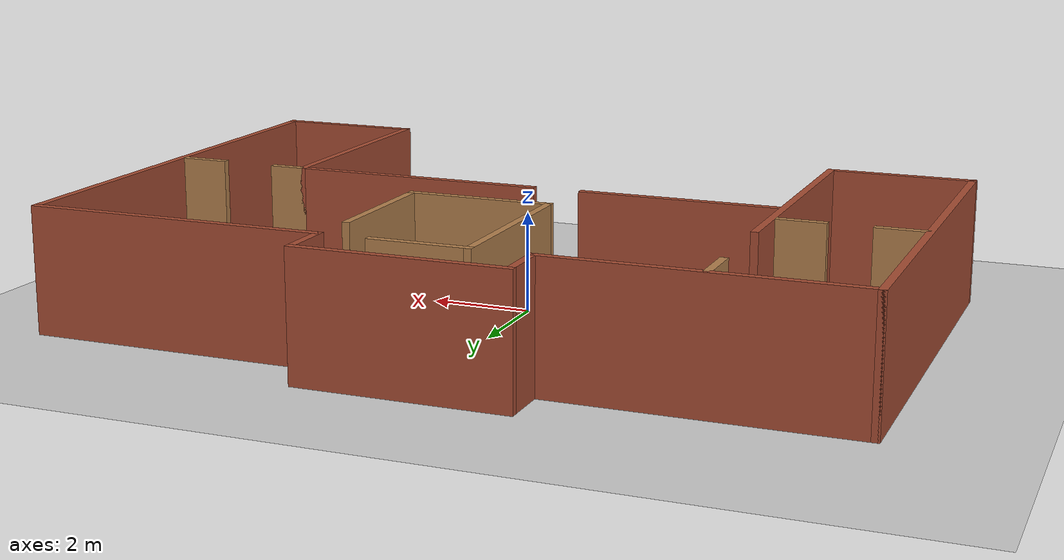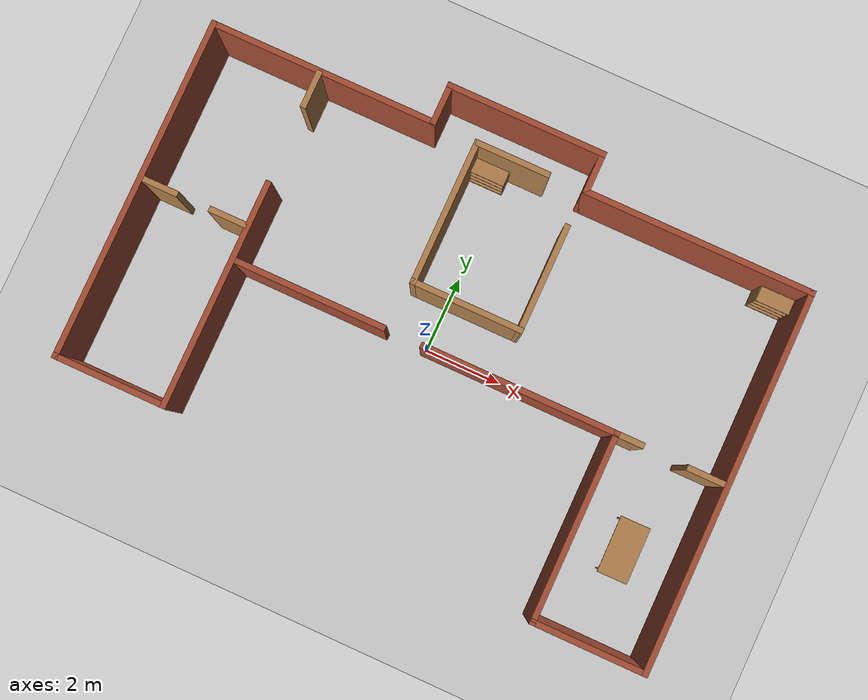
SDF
<sdf version="1.6">
 <world name="default">
  <model name="ground_plane">
   <static>1</static>
   <link name="link">
    <collision name="collision">
     <geometry><plane><normal>0 0 1</normal><size>100 100</size></plane></geometry>
     <surface>
      <contact><collide_bitmask>65535</collide_bitmask></contact>
      <friction><ode><mu>100</mu><mu2>50</mu2></ode></friction>
     </surface>
    </collision>
    <visual name="visual">
     <cast_shadows>0</cast_shadows>
     <geometry><plane><normal>0 0 1</normal><size>100 100</size></plane></geometry>
     <material>
      <script><uri>file://media/materials/scripts/gazebo.material</uri><name>Gazebo/Grey</name></script>
     </material>
    </visual>
   </link>
  </model>
  <model name="house_experiment_1">
   <pose>-0.00958 0.481803 0 0 -0 0</pose>
   <link name="Wall_0">
    <collision name="Wall_0_Collision">
     <geometry><box><size>4 0.15 2.5</size></box></geometry>
     <pose>0 0 1.25 0 -0 0</pose>
    </collision>
    <visual name="Wall_0_Visual">
     <pose>0 0 1.25 0 -0 0</pose>
     <geometry><box><size>4 0.15 2.5</size></box></geometry>
     <material>
      <script><uri>file://media/materials/scripts/gazebo.material</uri><name>Gazebo/Bricks</name></script>
      <ambient>1 1 1 1</ambient>
     </material>
     <meta><layer>0</layer></meta>
    </visual>
    <pose>-3.0204 -0.576783 0 0 -0 3.14159</pose>
   </link>
   <link name="Wall_10">
    <collision name="Wall_10_Collision">
     <geometry><box><size>4.195 0.15 2.5</size></box></geometry>
     <pose>0 0 1.25 0 -0 0</pose>
    </collision>
    <visual name="Wall_10_Visual">
     <pose>0 0 1.25 0 -0 0</pose>
     <geometry><box><size>4.195 0.15 2.5</size></box></geometry>
     <material>
      <script><uri>file://media/materials/scripts/gazebo.material</uri><name>Gazebo/Bricks</name></script>
      <ambient>1 1 1 1</ambient>
     </material>
     <meta><layer>0</layer></meta>
    </visual>
    <pose>-0.031569 5.42562 0 0 -0 0</pose>
   </link>
   <link name="Wall_12">
    <collision name="Wall_12_Collision">
     <geometry><box><size>6.05761 0.15 2.5</size></box></geometry>
     <pose>0 0 1.25 0 -0 0</pose>
    </collision>
    <visual name="Wall_12_Visual">
     <pose>0 0 1.25 0 -0 0</pose>
     <geometry><box><size>6.05761 0.15 2.5</size></box></geometry>
     <material>
      <script><uri>file://media/materials/scripts/gazebo.material</uri><name>Gazebo/Bricks</name></script>
      <ambient>1 1 1 1</ambient>
     </material>
     <meta><layer>0</layer></meta>
    </visual>
    <pose>4.9462 4.42438 0 0 -0 0</pose>
   </link>
   <link name="Wall_13">
    <collision name="Wall_13_Collision">
     <geometry><box><size>10 0.15 2.5</size></box></geometry>
     <pose>0 0 1.25 0 -0 0</pose>
    </collision>
    <visual name="Wall_13_Visual">
     <pose>0 0 1.25 0 -0 0</pose>
     <geometry><box><size>10 0.15 2.5</size></box></geometry>
     <material>
      <script><uri>file://media/materials/scripts/gazebo.material</uri><name>Gazebo/Bricks</name></script>
      <ambient>1 1 1 1</ambient>
     </material>
     <meta><layer>0</layer></meta>
    </visual>
    <pose>7.9 -0.50062 0 0 -0 -1.5708</pose>
   </link>
   <link name="Wall_15">
    <collision name="Wall_15_Collision">
     <geometry><box><size>3.02263 0.15 2.5</size></box></geometry>
     <pose>0 0 1.25 0 -0 0</pose>
    </collision>
    <visual name="Wall_15_Visual">
     <pose>0 0 1.25 0 -0 0</pose>
     <geometry><box><size>3.02263 0.15 2.5</size></box></geometry>
     <material>
      <script><uri>file://media/materials/scripts/gazebo.material</uri><name>Gazebo/Bricks</name></script>
      <ambient>1 1 1 1</ambient>
     </material>
     <meta><layer>0</layer></meta>
    </visual>
    <pose>6.46369 -5.42562 0 0 -0 3.14159</pose>
   </link>
   <link name="Wall_16">
    <collision name="Wall_16_Collision">
     <geometry><box><size>5 0.15 2.5</size></box></geometry>
     <pose>0 0 1.25 0 -0 0</pose>
    </collision>
    <visual name="Wall_16_Visual">
     <pose>0 0 1.25 0 -0 0</pose>
     <geometry><box><size>5 0.15 2.5</size></box></geometry>
     <material>
      <script><uri>file://media/materials/scripts/gazebo.material</uri><name>Gazebo/Bricks</name></script>
      <ambient>1 1 1 1</ambient>
     </material>
     <meta><layer>0</layer></meta>
    </visual>
    <pose>5.00988 -3.00062 0 0 -0 1.5708</pose>
   </link>
   <link name="Wall_17">
    <collision name="Wall_17_Collision">
     <geometry><box><size>5.18251 0.15 2.5</size></box></geometry>
     <pose>0 0 1.25 0 -0 0</pose>
    </collision>
    <visual name="Wall_17_Visual">
     <pose>0 0 1.25 0 -0 0</pose>
     <geometry><box><size>5.18251 0.15 2.5</size></box></geometry>
     <material>
      <script><uri>file://media/materials/scripts/gazebo.material</uri><name>Gazebo/Bricks</name></script>
      <ambient>1 1 1 1</ambient>
     </material>
     <meta><layer>0</layer></meta>
    </visual>
    <pose>2.49363 -0.57562 0 0 -0 3.14159</pose>
   </link>
   <link name="Wall_19">
    <collision name="Wall_19_Collision">
     <geometry><box><size>1 0.15 2.5</size></box></geometry>
     <pose>0 0 1.25 0 -0 0</pose>
    </collision>
    <visual name="Wall_19_Visual">
     <pose>0 0 1.25 0 -0 0</pose>
     <geometry><box><size>1 0.15 2.5</size></box></geometry>
     <material>
      <script><uri>file://media/materials/scripts/gazebo.material</uri><name>Gazebo/Wood</name></script>
      <ambient>1 1 1 1</ambient>
     </material>
     <meta><layer>0</layer></meta>
    </visual>
    <pose>-5.06582 3.95394 0 0 -0 -1.5708</pose>
   </link>
   <link name="Wall_2">
    <collision name="Wall_2_Collision">
     <geometry><box><size>6 0.15 2.5</size></box></geometry>
     <pose>0 0 1.25 0 -0 0</pose>
    </collision>
    <visual name="Wall_2_Visual">
     <pose>0 0 1.25 0 -0 0</pose>
     <geometry><box><size>6 0.15 2.5</size></box></geometry>
     <material>
      <script><uri>file://media/materials/scripts/gazebo.material</uri><name>Gazebo/Bricks</name></script>
      <ambient>1 1 1 1</ambient>
     </material>
     <meta><layer>0</layer></meta>
    </visual>
    <pose>-5.05 -1.50062 0 0 -0 1.5708</pose>
   </link>
   <link name="Wall_21">
    <collision name="Wall_21_Collision">
     <geometry><box><size>1 0.15 2.5</size></box></geometry>
     <pose>0 0 1.25 0 -0 0</pose>
    </collision>
    <visual name="Wall_21_Visual">
     <pose>0 0 1.25 0 -0 0</pose>
     <geometry><box><size>1 0.15 2.5</size></box></geometry>
     <material>
      <script><uri>file://media/materials/scripts/gazebo.material</uri><name>Gazebo/Wood</name></script>
      <ambient>1 1 1 1</ambient>
     </material>
     <meta><layer>0</layer></meta>
    </visual>
    <pose>-7.40216 0.29684 0 0 -0 0</pose>
   </link>
   <link name="Wall_23">
    <collision name="Wall_23_Collision">
     <geometry><box><size>1 0.15 2.5</size></box></geometry>
     <pose>0 0 1.25 0 -0 0</pose>
    </collision>
    <visual name="Wall_23_Visual">
     <pose>0 0 1.25 0 -0 0</pose>
     <geometry><box><size>1 0.15 2.5</size></box></geometry>
     <material>
      <script><uri>file://media/materials/scripts/gazebo.material</uri><name>Gazebo/Wood</name></script>
      <ambient>1 1 1 1</ambient>
     </material>
     <meta><layer>0</layer></meta>
    </visual>
    <pose>-5.57618 0.29684 0 0 -0 3.14159</pose>
   </link>
   <link name="Wall_25">
    <collision name="Wall_25_Collision">
     <geometry><box><size>0.790119 0.15 2.5</size></box></geometry>
     <pose>0 0 1.25 0 -0 0</pose>
    </collision>
    <visual name="Wall_25_Visual">
     <pose>0 0 1.25 0 -0 0</pose>
     <geometry><box><size>0.790119 0.15 2.5</size></box></geometry>
     <material>
      <script><uri>file://media/materials/scripts/gazebo.material</uri><name>Gazebo/Wood</name></script>
      <ambient>1 1 1 1</ambient>
     </material>
     <meta><layer>0</layer></meta>
    </visual>
    <pose>5.32994 -0.57562 0 0 -0 0</pose>
   </link>
   <link name="Wall_27">
    <collision name="Wall_27_Collision">
     <geometry><box><size>1 0.15 2.5</size></box></geometry>
     <pose>0 0 1.25 0 -0 0</pose>
    </collision>
    <visual name="Wall_27_Visual">
     <pose>0 0 1.25 0 -0 0</pose>
     <geometry><box><size>1 0.15 2.5</size></box></geometry>
     <material>
      <script><uri>file://media/materials/scripts/gazebo.material</uri><name>Gazebo/Wood</name></script>
      <ambient>1 1 1 1</ambient>
     </material>
     <meta><layer>0</layer></meta>
    </visual>
    <pose>7.34898 -0.612643 0 0 -0 3.14159</pose>
   </link>
   <link name="Wall_36">
    <collision name="Wall_36_Collision">
     <geometry><box><size>1 0.15 2.5</size></box></geometry>
     <pose>0 0 1.25 0 -0 0</pose>
    </collision>
    <visual name="Wall_36_Visual">
     <pose>0 0 1.25 0 -0 0</pose>
     <geometry><box><size>1 0.15 2.5</size></box></geometry>
     <material>
      <script><uri>file://media/materials/scripts/gazebo.material</uri><name>Gazebo/Bricks</name></script>
      <ambient>1 1 1 1</ambient>
     </material>
     <meta><layer>0</layer></meta>
    </visual>
    <pose>-2.05 4.86687 0 0 -0 1.5708</pose>
   </link>
   <link name="Wall_38">
    <collision name="Wall_38_Collision">
     <geometry><box><size>1 0.15 2.5</size></box></geometry>
     <pose>0 0 1.25 0 -0 0</pose>
    </collision>
    <visual name="Wall_38_Visual">
     <pose>0 0 1.25 0 -0 0</pose>
     <geometry><box><size>1 0.15 2.5</size></box></geometry>
     <material>
      <script><uri>file://media/materials/scripts/gazebo.material</uri><name>Gazebo/Bricks</name></script>
      <ambient>1 1 1 1</ambient>
     </material>
     <meta><layer>0</layer></meta>
    </visual>
    <pose>1.99239 4.84938 0 0 -0 1.5708</pose>
   </link>
   <link name="Wall_4">
    <collision name="Wall_4_Collision">
     <geometry><box><size>3 0.15 2.5</size></box></geometry>
     <pose>0 0 1.25 0 -0 0</pose>
    </collision>
    <visual name="Wall_4_Visual">
     <pose>0 0 1.25 0 -0 0</pose>
     <geometry><box><size>3 0.15 2.5</size></box></geometry>
     <material>
      <script><uri>file://media/materials/scripts/gazebo.material</uri><name>Gazebo/Bricks</name></script>
      <ambient>1 1 1 1</ambient>
     </material>
     <meta><layer>0</layer></meta>
    </visual>
    <pose>-6.475 -4.42562 0 0 -0 3.14159</pose>
   </link>
   <link name="Wall_40">
    <collision name="Wall_40_Collision">
     <geometry><box><size>3.84549 0.15 2.5</size></box></geometry>
     <pose>0 0 1.25 0 -0 0</pose>
    </collision>
    <visual name="Wall_40_Visual">
     <pose>0 0 1.25 0 -0 0</pose>
     <geometry><box><size>3.84549 0.15 2.5</size></box></geometry>
     <material>
      <script><uri>file://media/materials/scripts/gazebo.material</uri><name>Gazebo/Wood</name></script>
      <ambient>1 1 1 1</ambient>
     </material>
     <meta><layer>0</layer></meta>
    </visual>
    <pose>-0.885356 2.57359 0 0 -0 1.5708</pose>
   </link>
   <link name="Wall_46">
    <collision name="Wall_46_Collision">
     <geometry><box><size>2.9508 0.15 2.5</size></box></geometry>
     <pose>0 0 1.25 0 -0 0</pose>
    </collision>
    <visual name="Wall_46_Visual">
     <pose>0 0 1.25 0 -0 0</pose>
     <geometry><box><size>2.9508 0.15 2.5</size></box></geometry>
     <material>
      <script><uri>file://media/materials/scripts/gazebo.material</uri><name>Gazebo/Wood</name></script>
      <ambient>1 1 1 1</ambient>
     </material>
     <meta><layer>0</layer></meta>
    </visual>
    <pose>0.515046 0.725904 0 0 -0 0</pose>
   </link>
   <link name="Wall_47">
    <collision name="Wall_47_Collision">
     <geometry><box><size>2.86746 0.15 2.5</size></box></geometry>
     <pose>0 0 1.25 0 -0 0</pose>
    </collision>
    <visual name="Wall_47_Visual">
     <pose>0 0 1.25 0 -0 0</pose>
     <geometry><box><size>2.86746 0.15 2.5</size></box></geometry>
     <material>
      <script><uri>file://media/materials/scripts/gazebo.material</uri><name>Gazebo/Wood</name></script>
      <ambient>1 1 1 1</ambient>
     </material>
     <meta><layer>0</layer></meta>
    </visual>
    <pose>1.92092 2.08463 0 0 -0 1.57097</pose>
   </link>
   <link name="Wall_49">
    <collision name="Wall_49_Collision">
     <geometry><box><size>2 0.15 2.5</size></box></geometry>
     <pose>0 0 1.25 0 -0 0</pose>
    </collision>
    <visual name="Wall_49_Visual">
     <pose>0 0 1.25 0 -0 0</pose>
     <geometry><box><size>2 0.15 2.5</size></box></geometry>
     <material>
      <script><uri>file://media/materials/scripts/gazebo.material</uri><name>Gazebo/Wood</name></script>
      <ambient>1 1 1 1</ambient>
     </material>
     <meta><layer>0</layer></meta>
    </visual>
    <pose>0.039644 4.42127 0 0 -0 0</pose>
   </link>
   <link name="Wall_6">
    <collision name="Wall_6_Collision">
     <geometry><box><size>9.01749 0.15 2.5</size></box></geometry>
     <pose>0 0 1.25 0 -0 0</pose>
    </collision>
    <visual name="Wall_6_Visual">
     <pose>0 0 1.25 0 -0 0</pose>
     <geometry><box><size>9.01749 0.15 2.5</size></box></geometry>
     <material>
      <script><uri>file://media/materials/scripts/gazebo.material</uri><name>Gazebo/Bricks</name></script>
      <ambient>1 1 1 1</ambient>
     </material>
     <meta><layer>0</layer></meta>
    </visual>
    <pose>-7.9 0.008125 0 0 -0 1.5708</pose>
   </link>
   <link name="Wall_8">
    <collision name="Wall_8_Collision">
     <geometry><box><size>6 0.15 2.5</size></box></geometry>
     <pose>0 0 1.25 0 -0 0</pose>
    </collision>
    <visual name="Wall_8_Visual">
     <pose>0 0 1.25 0 -0 0</pose>
     <geometry><box><size>6 0.15 2.5</size></box></geometry>
     <material>
      <script><uri>file://media/materials/scripts/gazebo.material</uri><name>Gazebo/Bricks</name></script>
      <ambient>1 1 1 1</ambient>
     </material>
     <meta><layer>0</layer></meta>
    </visual>
    <pose>-4.975 4.44187 0 0 -0 0</pose>
   </link>
   <static>1</static>
  </model>
  <model name="table_1">
   <static>1</static>
   <link name="link">
    <collision name="surface">
     <pose>0 0 1 0 -0 0</pose>
     <geometry><box><size>1.5 0.8 0.03</size></box></geometry>
     <surface><friction><ode><mu>0.6</mu><mu2>0.6</mu2></ode></friction></surface>
    </collision>
    <visual name="visual1">
     <pose>0 0 1 0 -0 0</pose>
     <geometry><box><size>1.5 0.8 0.03</size></box></geometry>
     <material>
      <script><uri>file://media/materials/scripts/gazebo.material</uri><name>Gazebo/Wood</name></script>
     </material>
    </visual>
    <collision name="front_left_leg">
     <pose>0.68 0.38 0.5 0 -0 0</pose>
     <geometry><cylinder><radius>0.02</radius><length>1</length></cylinder></geometry>
    </collision>
    <visual name="front_left_leg">
     <pose>0.68 0.38 0.5 0 -0 0</pose>
     <geometry><cylinder><radius>0.02</radius><length>1</length></cylinder></geometry>
     <material>
      <script><uri>file://media/materials/scripts/gazebo.material</uri><name>Gazebo/Grey</name></script>
     </material>
    </visual>
    <collision name="front_right_leg">
     <pose>0.68 -0.38 0.5 0 -0 0</pose>
     <geometry><cylinder><radius>0.02</radius><length>1</length></cylinder></geometry>
    </collision>
    <visual name="front_right_leg">
     <pose>0.68 -0.38 0.5 0 -0 0</pose>
     <geometry><cylinder><radius>0.02</radius><length>1</length></cylinder></geometry>
     <material>
      <script><uri>file://media/materials/scripts/gazebo.material</uri><name>Gazebo/Grey</name></script>
     </material>
    </visual>
    <collision name="back_right_leg">
     <pose>-0.68 -0.38 0.5 0 -0 0</pose>
     <geometry><cylinder><radius>0.02</radius><length>1</length></cylinder></geometry>
    </collision>
    <visual name="back_right_leg">
     <pose>-0.68 -0.38 0.5 0 -0 0</pose>
     <geometry><cylinder><radius>0.02</radius><length>1</length></cylinder></geometry>
     <material>
      <script><uri>file://media/materials/scripts/gazebo.material</uri><name>Gazebo/Grey</name></script>
     </material>
    </visual>
    <collision name="back_left_leg">
     <pose>-0.68 0.38 0.5 0 -0 0</pose>
     <geometry><cylinder><radius>0.02</radius><length>1</length></cylinder></geometry>
    </collision>
    <visual name="back_left_leg">
     <pose>-0.68 0.38 0.5 0 -0 0</pose>
     <geometry><cylinder><radius>0.02</radius><length>1</length></cylinder></geometry>
     <material>
      <script><uri>file://media/materials/scripts/gazebo.material</uri><name>Gazebo/Grey</name></script>
     </material>
    </visual>
   </link>
   <pose>6.51975 -2.51867 -0.425308 0 -0 1.57697</pose>
  </model>
  <model name="bookshelf_1">
   <static>1</static>
   <link name="link">
    <inertial><mass>1</mass></inertial>
    <collision name="back">
     <pose>0 0.005 0.6 0 -0 0</pose>
     <geometry><box><size>0.9 0.01 1.2</size></box></geometry>
    </collision>
    <visual name="visual1">
     <pose>0 0.005 0.6 0 -0 0</pose>
     <geometry><box><size>0.9 0.01 1.2</size></box></geometry>
     <material>
      <script><uri>file://media/materials/scripts/gazebo.material</uri><name>Gazebo/Wood</name></script>
     </material>
    </visual>
    <collision name="left_side">
     <pose>0.45 -0.195 0.6 0 -0 0</pose>
     <geometry><box><size>0.02 0.4 1.2</size></box></geometry>
    </collision>
    <visual name="visual2">
     <pose>0.45 -0.195 0.6 0 -0 0</pose>
     <geometry><box><size>0.02 0.4 1.2</size></box></geometry>
     <material>
      <script><uri>file://media/materials/scripts/gazebo.material</uri><name>Gazebo/Wood</name></script>
     </material>
    </visual>
    <collision name="right_side">
     <pose>-0.45 -0.195 0.6 0 -0 0</pose>
     <geometry><box><size>0.02 0.4 1.2</size></box></geometry>
    </collision>
    <visual name="visual3">
     <pose>-0.45 -0.195 0.6 0 -0 0</pose>
     <geometry><box><size>0.02 0.4 1.2</size></box></geometry>
     <material>
      <script><uri>file://media/materials/scripts/gazebo.material</uri><name>Gazebo/Wood</name></script>
     </material>
    </visual>
    <collision name="bottom">
     <pose>0 -0.195 0.03 0 -0 0</pose>
     <geometry><box><size>0.88 0.4 0.06</size></box></geometry>
    </collision>
    <visual name="visual4">
     <pose>0 -0.195 0.03 0 -0 0</pose>
     <geometry><box><size>0.88 0.4 0.06</size></box></geometry>
     <material>
      <script><uri>file://media/materials/scripts/gazebo.material</uri><name>Gazebo/Wood</name></script>
     </material>
    </visual>
    <collision name="top">
     <pose>0 -0.195 1.19 0 -0 0</pose>
     <geometry><box><size>0.88 0.4 0.02</size></box></geometry>
    </collision>
    <visual name="visual5">
     <pose>0 -0.195 1.19 0 -0 0</pose>
     <geometry><box><size>0.88 0.4 0.02</size></box></geometry>
     <material>
      <script><uri>file://media/materials/scripts/gazebo.material</uri><name>Gazebo/Wood</name></script>
     </material>
    </visual>
    <collision name="low_shelf">
     <pose>0 -0.195 0.43 0 -0 0</pose>
     <geometry><box><size>0.88 0.4 0.02</size></box></geometry>
    </collision>
    <visual name="visual6">
     <pose>0 -0.195 0.43 0 -0 0</pose>
     <geometry><box><size>0.88 0.4 0.02</size></box></geometry>
     <material>
      <script><uri>file://media/materials/scripts/gazebo.material</uri><name>Gazebo/Wood</name></script>
     </material>
    </visual>
    <collision name="high_shelf">
     <pose>0 -0.195 0.8 0 -0 0</pose>
     <geometry><box><size>0.88 0.4 0.02</size></box></geometry>
    </collision>
    <visual name="visual7">
     <pose>0 -0.195 0.8 0 -0 0</pose>
     <geometry><box><size>0.88 0.4 0.02</size></box></geometry>
     <material>
      <script><uri>file://media/materials/scripts/gazebo.material</uri><name>Gazebo/Wood</name></script>
     </material>
    </visual>
   </link>
   <pose>-0.380414 4.83231 0 0 -0 0</pose>
  </model>
  <model name="bookshelf_2">
   <static>1</static>
   <link name="link">
    <inertial><mass>1</mass></inertial>
    <collision name="back">
     <pose>0 0.005 0.6 0 -0 0</pose>
     <geometry><box><size>0.9 0.01 1.2</size></box></geometry>
    </collision>
    <visual name="visual1">
     <pose>0 0.005 0.6 0 -0 0</pose>
     <geometry><box><size>0.9 0.01 1.2</size></box></geometry>
     <material>
      <script><uri>file://media/materials/scripts/gazebo.material</uri><name>Gazebo/Wood</name></script>
     </material>
    </visual>
    <collision name="left_side">
     <pose>0.45 -0.195 0.6 0 -0 0</pose>
     <geometry><box><size>0.02 0.4 1.2</size></box></geometry>
    </collision>
    <visual name="visual2">
     <pose>0.45 -0.195 0.6 0 -0 0</pose>
     <geometry><box><size>0.02 0.4 1.2</size></box></geometry>
     <material>
      <script><uri>file://media/materials/scripts/gazebo.material</uri><name>Gazebo/Wood</name></script>
     </material>
    </visual>
    <collision name="right_side">
     <pose>-0.45 -0.195 0.6 0 -0 0</pose>
     <geometry><box><size>0.02 0.4 1.2</size></box></geometry>
    </collision>
    <visual name="visual3">
     <pose>-0.45 -0.195 0.6 0 -0 0</pose>
     <geometry><box><size>0.02 0.4 1.2</size></box></geometry>
     <material>
      <script><uri>file://media/materials/scripts/gazebo.material</uri><name>Gazebo/Wood</name></script>
     </material>
    </visual>
    <collision name="bottom">
     <pose>0 -0.195 0.03 0 -0 0</pose>
     <geometry><box><size>0.88 0.4 0.06</size></box></geometry>
    </collision>
    <visual name="visual4">
     <pose>0 -0.195 0.03 0 -0 0</pose>
     <geometry><box><size>0.88 0.4 0.06</size></box></geometry>
     <material>
      <script><uri>file://media/materials/scripts/gazebo.material</uri><name>Gazebo/Wood</name></script>
     </material>
    </visual>
    <collision name="top">
     <pose>0 -0.195 1.19 0 -0 0</pose>
     <geometry><box><size>0.88 0.4 0.02</size></box></geometry>
    </collision>
    <visual name="visual5">
     <pose>0 -0.195 1.19 0 -0 0</pose>
     <geometry><box><size>0.88 0.4 0.02</size></box></geometry>
     <material>
      <script><uri>file://media/materials/scripts/gazebo.material</uri><name>Gazebo/Wood</name></script>
     </material>
    </visual>
    <collision name="low_shelf">
     <pose>0 -0.195 0.43 0 -0 0</pose>
     <geometry><box><size>0.88 0.4 0.02</size></box></geometry>
    </collision>
    <visual name="visual6">
     <pose>0 -0.195 0.43 0 -0 0</pose>
     <geometry><box><size>0.88 0.4 0.02</size></box></geometry>
     <material>
      <script><uri>file://media/materials/scripts/gazebo.material</uri><name>Gazebo/Wood</name></script>
     </material>
    </visual>
    <collision name="high_shelf">
     <pose>0 -0.195 0.8 0 -0 0</pose>
     <geometry><box><size>0.88 0.4 0.02</size></box></geometry>
    </collision>
    <visual name="visual7">
     <pose>0 -0.195 0.8 0 -0 0</pose>
     <geometry><box><size>0.88 0.4 0.02</size></box></geometry>
     <material>
      <script><uri>file://media/materials/scripts/gazebo.material</uri><name>Gazebo/Wood</name></script>
     </material>
    </visual>
   </link>
   <pose>7.36015 4.82047 0 0 -0 0</pose>
  </model>
 </world>
</sdf>
